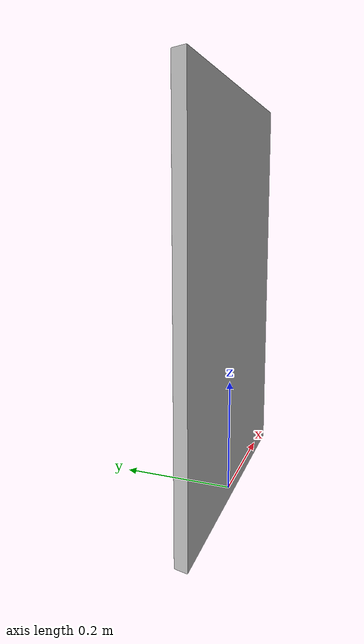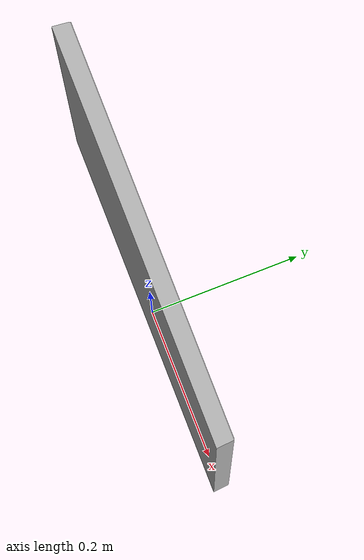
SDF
<?xml version="1.0" ?>
<sdf version="1.8">
  <model name="aws_robomaker_residential_PortraitA_01">
    <link name="link">
      <inertial>
        <mass>1	</mass>
        <inertia>
          <ixx>  4.3388701859e-02 </ixx>
          <ixy>  3.0630320763e-10 </ixy>
          <ixz> -9.1092117801e-12 </ixz>
          <iyy>  2.2485859760e-02 </iyy>
          <iyz>  6.0319674257e-09 </iyz>
          <izz>  6.5832494111e-02 </izz>
        </inertia>
      </inertial>
      <collision name="collision">
        <geometry>
          <mesh>
            <uri>model://aws_robomaker_residential_PortraitA_01/meshes/aws_PortraitA_01_collision.DAE</uri>
            <scale>1 1 1</scale>
          </mesh>
        </geometry>
      </collision>
      <visual name="visual">
	      <geometry>
          <mesh>
            <uri>model://aws_robomaker_residential_PortraitA_01/meshes/aws_PortraitA_01_visual.DAE</uri>
          </mesh>
        </geometry>
      <meta> <layer> 2 </layer></meta>
      </visual>
    </link>
	  <static>1</static>
  </model>
</sdf>
